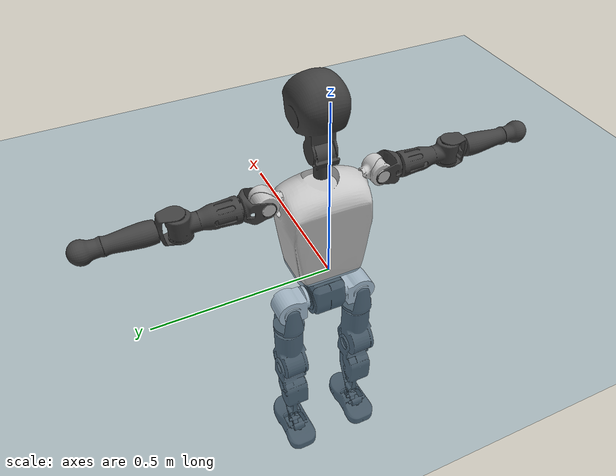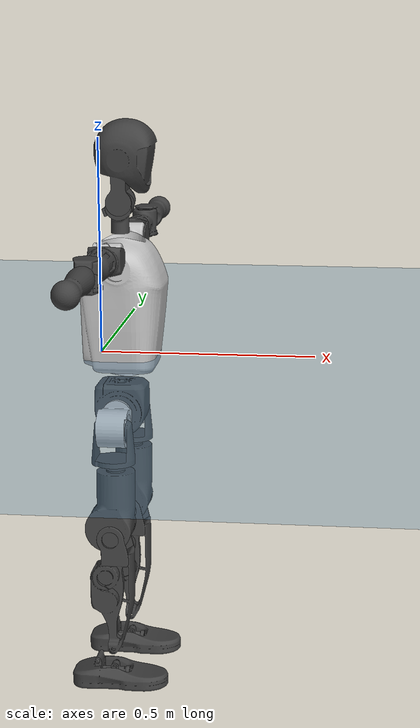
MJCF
<mujoco model="T1">
  <compiler angle="radian" assetdir="assets" balanceinertia="true" inertiafromgeom="false"/>

  <option timestep="0.005" density="1.2" viscosity="2e-05"/>

  <size nkey="1"/>

  <visual>
    <quality shadowsize="8192"/>
    <map shadowclip="0.5"/>
  </visual>

  <default>
    <default class="/">
      <joint armature="0.01" damping="0.01" frictionloss="0.1"/>
      <geom contype="0" conaffinity="0" group="1" solref="-1000 -80"/>
      <site size="0.01 0.005 0.005" group="5"/>
      <general forcelimited="true" biastype="affine" gainprm="25" biasprm="0 -25 -0.6"/>
      <default class="t1">
        <geom rgba="0.25 0.25 0.25 1"/>
        <default class="visual">
          <geom type="mesh" group="2"/>
        </default>
        <default class="collision">
          <geom group="3"/>
        </default>
        <default class="foot">
          <geom size="0.1115 0.05 0.015" type="box" condim="6" group="4" priority="1" solimp="0.015 1 0.015"/>
        </default>
        <default class="reward_collision_sphere">
          <geom group="5" rgba="1 0 0 1"/>
        </default>
      </default>
    </default>
  </default>

  <asset>
    <texture type="skybox" colorspace="auto" name="//unnamed_texture_0" builtin="gradient" rgb1="0.95 0.95 0.95" rgb2="0.95 0.95 0.95" width="100" height="600"/>
    <texture type="2d" colorspace="auto" name="texplane" builtin="checker" rgb1="0.345 0.575 0.748" rgb2="0.345 0.575 0.748" markrgb="1 1 1" width="512" height="512"/>
    <material name="MatPlane" class="/" texture="texplane" texuniform="true" texrepeat="2 2" specular="0.9"/>
    <mesh name="Trunk" class="/" file="Trunk.stl"/>
    <mesh name="H1" class="/" file="H1.stl"/>
    <mesh name="H2" class="/" file="H2.stl"/>
    <mesh name="AL1" class="/" file="AL1.stl"/>
    <mesh name="AL2" class="/" file="AL2.stl"/>
    <mesh name="AL3" class="/" file="AL3.stl"/>
    <mesh name="left_hand_link" class="/" file="left_hand_link.stl"/>
    <mesh name="AR1" class="/" file="AR1.stl"/>
    <mesh name="AR2" class="/" file="AR2.stl"/>
    <mesh name="AR3" class="/" file="AR3.stl"/>
    <mesh name="right_hand_link" class="/" file="right_hand_link.stl"/>
    <mesh name="Waist" class="/" file="Waist.stl"/>
    <mesh name="Hip_Pitch_Left" class="/" file="Hip_Pitch_Left.stl"/>
    <mesh name="Hip_Roll_Left" class="/" file="Hip_Roll_Left.stl"/>
    <mesh name="Hip_Yaw_Left" class="/" file="Hip_Yaw_Left.stl"/>
    <mesh name="Shank_Left" class="/" file="Shank_Left.stl"/>
    <mesh name="Ankle_Cross_Left" class="/" file="Ankle_Cross_Left.stl"/>
    <mesh name="left_foot_link" class="/" file="left_foot_link.stl"/>
    <mesh name="Hip_Pitch_Right" class="/" file="Hip_Pitch_Right.stl"/>
    <mesh name="Hip_Roll_Right" class="/" file="Hip_Roll_Right.stl"/>
    <mesh name="Hip_Yaw_Right" class="/" file="Hip_Yaw_Right.stl"/>
    <mesh name="Shank_Right" class="/" file="Shank_Right.stl"/>
    <mesh name="Ankle_Cross_Right" class="/" file="Ankle_Cross_Right.stl"/>
    <mesh name="right_foot_link" class="/" file="right_foot_link.stl"/>
  </asset>

  <worldbody>
    <geom name="floor" class="/" size="100 100 0.125" type="plane" group="0" material="MatPlane"/>
    <light name="toplight_shadow" class="/" pos="0 0 5" dir="0.0990148 0.0990148 -0.990148" type="directional" ambient="0.04 0.04 0.04" diffuse="0.55 0.55 0.55" specular="0.12 0.12 0.12"/>
    <light name="toplight_fill" class="/" pos="0 0 5" dir="0.0990148 0.0990148 -0.990148" type="directional" castshadow="false" ambient="0.04 0.04 0.04" diffuse="0.3 0.3 0.3" specular="0.08 0.08 0.08"/>
    <body name="trunk" childclass="t1" pos="-0.00039791 -0.000898949 -0.000502428" quat="0.999999 0.000472769 -0.000168541 -0.00127216">
      <inertial pos="0.0412953 -0.00340624 0.12198" quat="0.999964 -0.000215835 -0.00843414 -0.000416089" mass="11.4537" diaginertia="0.031363 0.090058 0.116195"/>
      <joint name="//unnamed_joint_0" type="free" armature="0" damping="0" frictionloss="0"/>
      <geom name="//unnamed_geom_1" class="visual" rgba="0.76 0.76 0.76 1" mesh="Trunk"/>
      <geom name="//unnamed_geom_2" class="collision" size="0.0751281 0.100171 0.150256" pos="0.0482762 0 0.13991" type="box"/>
      <geom name="//unnamed_geom_3" class="reward_collision_sphere" size="0.115196" pos="0.0482762 0 0.116592"/>
      <geom name="//unnamed_geom_4" class="reward_collision_sphere" size="0.0150256" pos="0.0482762 0.0879413 0"/>
      <geom name="//unnamed_geom_5" class="reward_collision_sphere" size="0.0150256" pos="0.0482762 -0.0879413 0"/>
      <geom name="//unnamed_geom_6" class="reward_collision_sphere" size="0.0150256" pos="0.0482762 0.110703 0.209865"/>
      <geom name="//unnamed_geom_7" class="reward_collision_sphere" size="0.0150256" pos="0.0482762 -0.110703 0.209865"/>
      <site name="imu" pos="0.0103217 -0.00521266 -0.0103785" size="0.0100171"/>
      <camera name="track" pos="0 -2.06921 0" quat="0.707107 0.707107 0 0" mode="trackcom"/>
      <camera name="ego_camera" pos="0.0981616 0 0.489685" quat="-0.5 -0.5 0.5 0.5"/>
      <body name="H1" pos="0.0487181 0.00044785 0.28271" quat="1 -1.05725e-06 -1.55648e-06 -3.18649e-07">
        <inertial pos="-0.00286788 0.00108052 0.067475" quat="0.758131 -0.00342131 0.00507187 0.652074" mass="0.444216" diaginertia="8.09302e-05 0.000255928 0.000305425"/>
        <joint name="AAHead_yaw" pos="0 0 0" axis="-0.0132164 0.00043781 0.999913" stiffness="0.009259" range="-1.55573 1.58892" armature="0.00920181" damping="0.00891489" frictionloss="0.101719"/>
        <geom name="//unnamed_geom_8" class="visual" mesh="H1"/>
        <body name="H2" pos="0.000873396 0.00251592 0.0724736" quat="1 0.000148007 -4.55706e-05 0.000502524">
          <inertial pos="0.00666543 0.00356562 0.114751" quat="0.987962 0.106248 -0.0757192 -0.0831207" mass="0.632139" diaginertia="0.000709928 0.00226338 0.00371706"/>
          <joint name="Head_pitch" pos="0 0 0" axis="0.00105744 -0.999999 0.000595075" stiffness="0.000223434" range="-1.23069 0.352461" armature="0.00864268" damping="0.00938159" frictionloss="0.112617"/>
          <geom name="//unnamed_geom_9" class="visual" mesh="H2"/>
          <geom name="//unnamed_geom_10" class="collision" size="0.0801366" pos="0.00804603 0 0.128251"/>
          <geom name="//unnamed_geom_11" class="reward_collision_sphere" size="0.0901537" pos="0.0160921 0 0.116592"/>
        </body>
      </body>
      <body name="AL1" pos="0.0477616 0.109683 0.25289" quat="1 -7.9091e-06 0.000436465 1.12914e-05">
        <inertial pos="-0.00338683 0.0458957 0.00100874" quat="0.504832 0.49673 -0.50397 0.494386" mass="0.537057" diaginertia="0.00046791 0.00154861 0.000619958"/>
        <joint name="Left_Shoulder_Pitch" pos="0 0 0" axis="-0.0102672 0.999899 -0.00982923" range="-3.29112 1.20374" armature="0.010566" damping="0.00849441" frictionloss="0.10026"/>
        <geom name="//unnamed_geom_12" class="visual" rgba="0.76 0.76 0.76 1" mesh="AL1"/>
        <body name="AL2" pos="-0.000526953 0.0477887 -0.00226024" quat="1 -9.28547e-05 0.000107156 0.000116645">
          <inertial pos="0.00415308 0.0382981 -0.00287951" quat="0.488025 0.502938 -0.488399 0.519953" mass="0.156817" diaginertia="0.000133649 0.000407867 0.000373753"/>
          <joint name="Left_Shoulder_Roll" pos="0 0 0" axis="-0.999985 0.0053855 0.000886921" stiffness="0.00100593" range="-1.58243 1.72329" armature="0.0100958" damping="0.00188254" frictionloss="0.100146"/>
          <geom name="//unnamed_geom_13" class="visual" mesh="AL2"/>
          <body name="AL3" pos="0.00122467 0.0633005 0.00100355" quat="1 0.000392552 0.000148217 5.87928e-05">
            <inertial pos="-0.00202598 0.088356 -0.000429702" quat="0.713034 0.701062 -0.0090567 -0.00346964" mass="1.04141" diaginertia="0.00444006 0.0153538 0.00131294"/>
            <joint name="Left_Elbow_Pitch" pos="0 0 0" axis="-7.45663e-05 -1 0.000137938" stiffness="0.000324939" range="-2.26213 2.29085" armature="0.0100329" damping="0.0228493" frictionloss="0.113576"/>
            <geom name="//unnamed_geom_14" class="visual" mesh="AL3"/>
            <geom name="//unnamed_geom_15" class="collision" size="0.0300512 0.0751281" pos="0 0.0517302 0" quat="0.707105 0.707108 0 0" type="cylinder"/>
            <geom name="//unnamed_geom_16" class="reward_collision_sphere" size="0.0360615"/>
            <body name="left_hand_link" pos="0.00313812 0.15445 0.00280536" quat="1 0.000255099 0.000400058 0.000204811">
              <inertial pos="0.00252964 0.111445 -0.00221382" quat="0.707156 0.707054 0.00133728 0.00150688" mass="0.328174" diaginertia="0.00273996 0.00990043 0.000476799"/>
              <joint name="Left_Elbow_Yaw" pos="0 0 0" axis="0.00346106 0.00422841 0.999985" range="-2.43103 0.0218954" armature="0.0109415" damping="0.0158106" frictionloss="0.0996697"/>
              <geom name="//unnamed_geom_17" class="visual" mesh="left_hand_link"/>
              <geom name="//unnamed_geom_18" class="collision" size="0.0300512 0.0876494" pos="0 0.134498 0" quat="0.707105 0.707108 0 0" type="cylinder"/>
              <geom name="//unnamed_geom_19" class="reward_collision_sphere" size="0.0500854"/>
              <geom name="//unnamed_geom_20" class="reward_collision_sphere" size="0.0350598" pos="0 0.113806 0"/>
              <geom name="//unnamed_geom_21" class="reward_collision_sphere" size="0.0350598" pos="0 0.22244 0"/>
            </body>
          </body>
        </body>
      </body>
      <body name="AR1" pos="0.0467641 -0.10934 0.254032" quat="0.999999 0.000350244 0.000365158 -0.0011438">
        <inertial pos="-0.000741564 -0.0471123 0.000353982" quat="0.503818 0.496869 -0.505231 0.493994" mass="0.551464" diaginertia="0.000462742 0.00158538 0.000656599"/>
        <joint name="Right_Shoulder_Pitch" pos="0 0 0" axis="-0.00269558 -0.999994 0.00207894" stiffness="0.000572416" range="-1.19197 3.30739" armature="0.0102348" damping="0.00693826" frictionloss="0.0979645"/>
        <geom name="//unnamed_geom_22" class="visual" rgba="0.76 0.76 0.76 1" mesh="AR1"/>
        <body name="AR2" pos="-0.000352542 -0.0485967 -0.00283931" quat="0.999999 0.000994036 -0.00031591 -0.000981069">
          <inertial pos="0.00308096 -0.0395362 0.000952236" quat="0.510035 0.496419 -0.505885 0.487353" mass="0.15623" diaginertia="0.000131991 0.000404266 0.000371215"/>
          <joint name="Right_Shoulder_Roll" pos="0 0 0" axis="-1 -0.000242406 9.43251e-05" range="-1.75018 1.55817" armature="0.00992942" damping="0" frictionloss="0.103892"/>
          <geom name="//unnamed_geom_23" class="visual" mesh="AR2"/>
          <body name="AR3" pos="-0.00251071 -0.0627191 -0.000448184" quat="0.999999 -0.000481639 -0.000243965 -0.0012796">
            <inertial pos="0.0021474 -0.0881649 0.000413388" quat="0.709879 0.704309 0.00116207 -0.00426308" mass="1.02217" diaginertia="0.00441371 0.0155224 0.00135054"/>
            <joint name="Right_Elbow_Pitch" pos="0 0 0" axis="-0.00597266 0.999982 -0.00061191" range="-2.26909 2.22117" armature="0.0104144" damping="0.00662163" frictionloss="0.104277"/>
            <geom name="//unnamed_geom_24" class="visual" mesh="AR3"/>
            <geom name="//unnamed_geom_25" class="collision" size="0.0300512 0.0751281" pos="0 -0.0517302 0" quat="0.707105 0.707108 0 0" type="cylinder"/>
            <geom name="//unnamed_geom_26" class="reward_collision_sphere" size="0.0360615"/>
            <body name="right_hand_link" pos="-0.00238623 -0.153814 0.00208807" quat="0.999999 -2.26428e-05 -0.000648552 0.00120446">
              <inertial pos="0.00218134 -0.113584 -0.00177083" quat="0.706494 0.707719 -0.000224217 -8.73745e-05" mass="0.31542" diaginertia="0.00258146 0.00911858 0.000463552"/>
              <joint name="Right_Elbow_Yaw" pos="0 0 0" axis="0.000439361 -0.0050868 0.999987" range="0.00812611 2.3833" armature="0.0100941" damping="0.00463992" frictionloss="0.0987655"/>
              <geom name="//unnamed_geom_27" class="visual" mesh="right_hand_link"/>
              <geom name="//unnamed_geom_28" class="collision" size="0.0300512 0.0876494" pos="0 -0.134498 0" quat="0.707105 0.707108 0 0" type="cylinder"/>
              <geom name="//unnamed_geom_29" class="reward_collision_sphere" size="0.0500854"/>
              <geom name="//unnamed_geom_30" class="reward_collision_sphere" size="0.0350598" pos="0 -0.113806 0"/>
              <geom name="//unnamed_geom_31" class="reward_collision_sphere" size="0.0350598" pos="0 -0.22244 0"/>
            </body>
          </body>
        </body>
      </body>
      <body name="Waist" pos="0.0484364 -0.00300744 -0.133451" quat="1 -0.000265042 0.000102461 -0.000424181">
        <inertial pos="0.000714073 0.00184924 0.0093517" quat="0.982153 -0.00667192 -0.187966 -0.000541716" mass="2.45871" diaginertia="0.00178887 0.00605666 0.00971063"/>
        <joint name="Waist" pos="0 0 0" axis="-7.93982e-05 -0.00234285 0.999997" range="-1.58102 1.56698" armature="0.00981985" damping="0.000807387" frictionloss="0.107319"/>
        <geom name="//unnamed_geom_32" class="visual" mesh="Waist"/>
        <body name="Hip_Pitch_Left" pos="0.0032969 0.109368 -0.000598785" quat="1 0.000125631 -0.000480426 7.05713e-05">
          <inertial pos="0.000610511 -0.00809452 -0.023969" quat="0.975097 0.221178 0.0161996 0.00182071" mass="1.01442" diaginertia="0.000602757 0.00171278 0.00267898"/>
          <joint name="Left_Hip_Pitch" pos="0 0 0" axis="0.00608644 0.999961 0.00634987" stiffness="0.00704241" range="-1.82108 1.62602" armature="0.0104308" damping="0" frictionloss="0.102851"/>
          <geom name="//unnamed_geom_33" class="visual" rgba="0.76 0.76 0.76 1" mesh="Hip_Pitch_Left"/>
          <body name="Hip_Roll_Left" pos="0.00299818 0.0014355 -0.0259674" quat="1 -0.000174973 8.36687e-05 -2.05207e-06">
            <inertial pos="0.00194052 -0.00022274 -0.0652291" quat="0.706113 -0.00904905 -0.00461691 0.708026" mass="0.394719" diaginertia="0.000622743 0.00179695 0.00111055"/>
            <joint name="Left_Hip_Roll" pos="0 0 0" axis="-0.999988 0.00244203 0.00433461" range="-1.57401 0.256707" armature="0.00939399" damping="0.00829029" frictionloss="0.0971934"/>
            <geom name="//unnamed_geom_34" class="visual" mesh="Hip_Roll_Left"/>
            <geom name="//unnamed_geom_35" class="reward_collision_sphere" size="0.0550939"/>
            <body name="Hip_Yaw_Left" pos="0.000754642 0.00238523 -0.0939577" quat="1 -3.83341e-05 2.19354e-05 2.40493e-05">
              <inertial pos="-0.006629 -8.37264e-07 -0.104501" quat="0.692719 -0.024283 -0.0247944 0.720372" mass="2.13324" diaginertia="0.00872105 0.0293035 0.00570657"/>
              <joint name="Left_Hip_Yaw" pos="0 0 0" axis="0.00120946 -0.00133843 -0.999998" range="-0.97912 1.05498" armature="0.0107644" damping="0.00162952" frictionloss="0.0988932"/>
              <geom name="//unnamed_geom_36" class="visual" mesh="Hip_Yaw_Left"/>
              <geom name="//unnamed_geom_37" class="collision" size="0.0500854 0.0801366" type="cylinder"/>
              <body name="Shank_Left" pos="-0.0107741 0.000786933 -0.159165" quat="1 0.000306831 -7.50075e-05 0.000252987">
                <inertial pos="-0.00402732 0.000159945 -0.147557" quat="0.99728 0.000777237 -0.0220342 0.0703304" mass="1.75197" diaginertia="0.0117831 0.0401725 0.0038311"/>
                <joint name="Left_Knee_Pitch" pos="0 0 0" axis="0.000109155 0.999998 0.00182137" stiffness="0.00846931" range="0.0277504 2.33254" armature="0.010223" damping="0.0104108" frictionloss="0.103827"/>
                <geom name="//unnamed_geom_38" class="visual" mesh="Shank_Left"/>
                <geom name="//unnamed_geom_39" class="collision" size="0.0500854 0.0751281" pos="0 0 -0.13991" type="cylinder"/>
                <geom name="//unnamed_geom_40" class="reward_collision_sphere" size="0.065111"/>
                <body name="Ankle_Cross_Left" pos="-0.000342683 4.76092e-08 -0.329162" quat="1 0.00016714 -0.000306723 0.000424851">
                  <inertial pos="-0.00553876 0.00280954 -0.00920491" quat="0.444133 0.550531 0.550972 0.442823" mass="0.0710255" diaginertia="9.87624e-06 2.92911e-05 2.45224e-05"/>
                  <joint name="Left_Ankle_Pitch" pos="0 0 0" axis="-0.00781866 0.99993 0.00885962" range="-0.908708 0.328529" armature="0.00863835" damping="0.00829968" frictionloss="0.107086"/>
                  <geom name="//unnamed_geom_41" class="visual" mesh="Ankle_Cross_Left"/>
                  <body name="left_foot_link" pos="0.000270913 0.000675659 -0.0119654" quat="0.999999 0.00132189 0.000347956 0.000220065">
                    <inertial pos="-0.00284205 0.000716864 -0.0105354" quat="0.00306317 0.618686 -0.00430137 0.785621" mass="0.673471" diaginertia="0.000924416 0.00278741 0.00485571"/>
                    <joint name="Left_Ankle_Roll" pos="0 0 0" axis="-0.999996 -0.002786 0.000492682" range="-0.495607 0.386335" armature="0.0106988" damping="0.0157352" frictionloss="0.0864714"/>
                    <geom name="//unnamed_geom_42" class="visual" mesh="left_foot_link"/>
                    <geom name="left_foot" class="foot" size="0.107388 0.0476468 0.0157682" pos="0.00804603 0 -0.0174887"/>
                    <geom name="//unnamed_geom_44" class="reward_collision_sphere" size="0.0520888" pos="0.00804603 0 -0.0174887"/>
                    <geom name="//unnamed_geom_45" class="reward_collision_sphere" size="0.0300512" pos="0.0764373 -0.0237959 -0.0174887"/>
                    <geom name="//unnamed_geom_46" class="reward_collision_sphere" size="0.0300512" pos="-0.0563222 -0.0237959 -0.0174887"/>
                    <site name="left_foot" class="foot" pos="0.00804603 0 -0.0174887" size="0.0100171"/>
                  </body>
                </body>
              </body>
            </body>
          </body>
        </body>
        <body name="Hip_Pitch_Right" pos="-0.0023304 -0.112516 0.000527131" quat="0.999999 -0.000147885 0.000847465 -0.000525409">
          <inertial pos="0.000348705 0.00553983 -0.0192184" quat="0.973001 -0.230427 0.0127385 -0.00305621" mass="1.02323" diaginertia="0.000624575 0.0017676 0.00281045"/>
          <joint name="Right_Hip_Pitch" pos="0 0 0" axis="-0.000914215 -0.999991 0.00420003" range="-1.56781 1.79295" armature="0.0111214" damping="0.00549386" frictionloss="0.0988976"/>
          <geom name="//unnamed_geom_47" class="visual" rgba="0.76 0.76 0.76 1" mesh="Hip_Pitch_Right"/>
          <body name="Hip_Roll_Right" pos="0.0023733 -0.00272788 -0.0251928" quat="1 3.33554e-05 1.72965e-06 0.000116499">
            <inertial pos="0.000629198 -0.000191344 -0.0603452" quat="0.707094 -0.0044463 -0.00557262 0.707083" mass="0.407033" diaginertia="0.00059947 0.00188435 0.00112271"/>
            <joint name="Right_Hip_Roll" pos="0 0 0" axis="-0.999973 -0.00187453 -0.00716693" stiffness="0.0103376" range="-0.201496 1.51924" armature="0.00936408" damping="0" frictionloss="0.086594"/>
            <geom name="//unnamed_geom_48" class="visual" mesh="Hip_Roll_Right"/>
            <geom name="//unnamed_geom_49" class="reward_collision_sphere" size="0.0550939"/>
            <body name="Hip_Yaw_Right" pos="0.00272362 -0.00250037 -0.0939071" quat="1 0.000155767 0.000354212 0.000516156">
              <inertial pos="-0.00451957 -0.00245269 -0.102243" quat="0.721393 -0.030681 -0.0409294 0.690634" mass="2.18752" diaginertia="0.00841461 0.0306039 0.00541124"/>
              <joint name="Right_Hip_Yaw" pos="0 0 0" axis="-0.00488046 0.00896222 -0.999948" stiffness="0.00974534" range="-1.02083 0.986339" armature="0.00877807" damping="0.0179423" frictionloss="0.0989907"/>
              <geom name="//unnamed_geom_50" class="visual" mesh="Hip_Yaw_Right"/>
              <geom name="//unnamed_geom_51" class="collision" size="0.0500854 0.0801366" type="cylinder"/>
              <body name="Shank_Right" pos="-0.00853785 0.00109263 -0.15717" quat="0.999999 -0.000219075 -0.000936566 0.000320393">
                <inertial pos="-0.00408316 -0.000365235 -0.143838" quat="0.999587 0.000630586 -0.0232368 -0.0169128" mass="1.78781" diaginertia="0.0122193 0.0414018 0.00431896"/>
                <joint name="Right_Knee_Pitch" pos="0 0 0" axis="0.00363497 -0.999993 -0.000628982" range="-2.33583 0.0356979" armature="0.0100915" damping="0.0225647" frictionloss="0.0992948"/>
                <geom name="//unnamed_geom_52" class="visual" mesh="Shank_Right"/>
                <geom name="//unnamed_geom_53" class="collision" size="0.0500854 0.0751281" pos="0 0 -0.13991" type="cylinder"/>
                <geom name="//unnamed_geom_54" class="reward_collision_sphere" size="0.065111"/>
                <body name="Ankle_Cross_Right" pos="0.0014585 0.000497909 -0.328357" quat="0.999999 0.000803766 -0.000754351 -0.000642383">
                  <inertial pos="-0.0023926 0.00277924 -0.0100352" quat="0.443149 0.550997 0.551026 0.44316" mass="0.0728651" diaginertia="9.45597e-06 3.03538e-05 2.36438e-05"/>
                  <joint name="Right_Ankle_Pitch" pos="0 0 0" axis="0.00439757 -0.99996 0.00774965" range="-0.399046 0.855039" armature="0.00998069" damping="0.00441274" frictionloss="0.104887"/>
                  <geom name="//unnamed_geom_55" class="visual" mesh="Ankle_Cross_Right"/>
                  <body name="right_foot_link" pos="0.00313422 -0.000271417 -0.0131261" quat="1 -0.000243042 -0.000114554 -9.54502e-05">
                    <inertial pos="-2.89565e-05 0.00239344 -0.0107491" quat="-0.00293652 0.621899 -0.00253616 0.783088" mass="0.732382" diaginertia="0.000950483 0.00291371 0.00483948"/>
                    <joint name="Right_Ankle_Roll" pos="0 0 0" axis="-0.99998 0.00591519 -0.00227932" range="-0.418233 0.411693" armature="0.0101077" damping="0.00539633" frictionloss="0.0868185"/>
                    <geom name="//unnamed_geom_56" class="visual" mesh="right_foot_link"/>
                    <geom name="right_foot" class="foot" size="0.0999921 0.048908 0.0155765" pos="0.00804603 0 -0.0174887"/>
                    <geom name="//unnamed_geom_58" class="reward_collision_sphere" size="0.0400683"/>
                    <geom name="//unnamed_geom_59" class="reward_collision_sphere" size="0.0300512" pos="0.00804603 0 -0.0174887"/>
                    <geom name="//unnamed_geom_60" class="reward_collision_sphere" size="0.0300512" pos="0.0764373 0.0237959 -0.0174887"/>
                    <geom name="//unnamed_geom_61" class="reward_collision_sphere" size="0.0300512" pos="-0.0563222 0.0237959 -0.0174887"/>
                    <site name="right_foot" class="foot" pos="0.00804603 0 -0.0174887" size="0.0100171"/>
                  </body>
                </body>
              </body>
            </body>
          </body>
        </body>
      </body>
    </body>
  </worldbody>

  <contact>
    <pair class="/" geom1="floor" geom2="left_foot" name="//unnamed_contact_0"/>
    <pair class="/" geom1="floor" geom2="right_foot" name="//unnamed_contact_1"/>
  </contact>

  <actuator>
    <general name="AAHead_yaw" class="/" joint="AAHead_yaw" forcerange="-7.18147 7.18147" gainprm="23.2869" biasprm="0 -23.2869 -0.601719"/>
    <general name="Head_pitch" class="/" joint="Head_pitch" forcerange="-6.85323 6.85323" gainprm="23.2869" biasprm="0 -23.2869 -0.601719"/>
    <general name="Left_Shoulder_Pitch" class="/" joint="Left_Shoulder_Pitch" forcerange="-16.3042 16.3042" gainprm="23.2869" biasprm="0 -23.2869 -0.601719"/>
    <general name="Left_Shoulder_Roll" class="/" joint="Left_Shoulder_Roll" forcerange="-17.9863 17.9863" gainprm="23.2869" biasprm="0 -23.2869 -0.601719"/>
    <general name="Left_Elbow_Pitch" class="/" joint="Left_Elbow_Pitch" forcerange="-17.5628 17.5628" gainprm="23.2869" biasprm="0 -23.2869 -0.601719"/>
    <general name="Left_Elbow_Yaw" class="/" joint="Left_Elbow_Yaw" forcerange="-17.8961 17.8961" gainprm="23.2869" biasprm="0 -23.2869 -0.601719"/>
    <general name="Right_Shoulder_Pitch" class="/" joint="Right_Shoulder_Pitch" forcerange="-18.8196 18.8196" gainprm="23.2869" biasprm="0 -23.2869 -0.601719"/>
    <general name="Right_Shoulder_Roll" class="/" joint="Right_Shoulder_Roll" forcerange="-18.3943 18.3943" gainprm="23.2869" biasprm="0 -23.2869 -0.601719"/>
    <general name="Right_Elbow_Pitch" class="/" joint="Right_Elbow_Pitch" forcerange="-17.2557 17.2557" gainprm="23.2869" biasprm="0 -23.2869 -0.601719"/>
    <general name="Right_Elbow_Yaw" class="/" joint="Right_Elbow_Yaw" forcerange="-17.1396 17.1396" gainprm="23.2869" biasprm="0 -23.2869 -0.601719"/>
    <general name="Waist" class="/" joint="Waist" forcerange="-29.04 29.04" gainprm="23.2869" biasprm="0 -23.2869 -0.601719"/>
    <general name="Left_Hip_Pitch" class="/" joint="Left_Hip_Pitch" forcerange="-45.0509 45.0509" gainprm="23.2869" biasprm="0 -23.2869 -0.601719"/>
    <general name="Left_Hip_Roll" class="/" joint="Left_Hip_Roll" forcerange="-28.9781 28.9781" gainprm="23.2869" biasprm="0 -23.2869 -0.601719"/>
    <general name="Left_Hip_Yaw" class="/" joint="Left_Hip_Yaw" forcerange="-28.9162 28.9162" gainprm="23.2869" biasprm="0 -23.2869 -0.601719"/>
    <general name="Left_Knee_Pitch" class="/" joint="Left_Knee_Pitch" forcerange="-59.8832 59.8832" gainprm="23.2869" biasprm="0 -23.2869 -0.601719"/>
    <general name="Left_Ankle_Pitch" class="/" joint="Left_Ankle_Pitch" forcerange="-22.0638 22.0638" gainprm="23.2869" biasprm="0 -23.2869 -0.601719"/>
    <general name="Left_Ankle_Roll" class="/" joint="Left_Ankle_Roll" forcerange="-13.4999 13.4999" gainprm="23.2869" biasprm="0 -23.2869 -0.601719"/>
    <general name="Right_Hip_Pitch" class="/" joint="Right_Hip_Pitch" forcerange="-45.8486 45.8486" gainprm="23.2869" biasprm="0 -23.2869 -0.601719"/>
    <general name="Right_Hip_Roll" class="/" joint="Right_Hip_Roll" forcerange="-33.0619 33.0619" gainprm="23.2869" biasprm="0 -23.2869 -0.601719"/>
    <general name="Right_Hip_Yaw" class="/" joint="Right_Hip_Yaw" forcerange="-27.4605 27.4605" gainprm="23.2869" biasprm="0 -23.2869 -0.601719"/>
    <general name="Right_Knee_Pitch" class="/" joint="Right_Knee_Pitch" forcerange="-55.483 55.483" gainprm="23.2869" biasprm="0 -23.2869 -0.601719"/>
    <general name="Right_Ankle_Pitch" class="/" joint="Right_Ankle_Pitch" forcerange="-19.7032 19.7032" gainprm="23.2869" biasprm="0 -23.2869 -0.601719"/>
    <general name="Right_Ankle_Roll" class="/" joint="Right_Ankle_Roll" forcerange="-16.4965 16.4965" gainprm="23.2869" biasprm="0 -23.2869 -0.601719"/>
  </actuator>

  <sensor>
    <gyro site="imu" name="imu_angular_velocity"/>
    <velocimeter site="imu" name="imu_linear_velocity"/>
    <framelinvel objtype="site" objname="left_foot" name="left_foot_global_linear_velocity"/>
    <framelinvel objtype="site" objname="right_foot" name="right_foot_global_linear_velocity"/>
  </sensor>

  <keyframe>
    <key name="home" qpos="0 0 0.6385 1 0 0 0 0 0 0 1.4 0 -0.4 0 -1.4 0 0.4 0 -0.4 0 0 0.8 -0.4 0 0.4 0 0 -0.8 0.4 0"/>
  </keyframe>
</mujoco>
